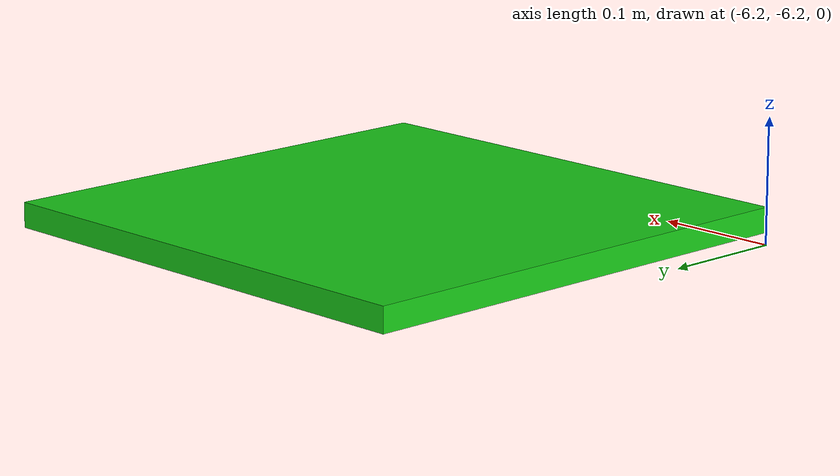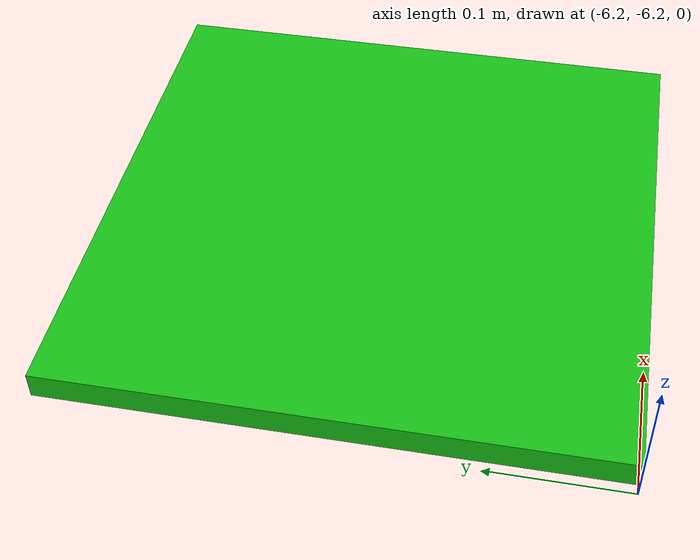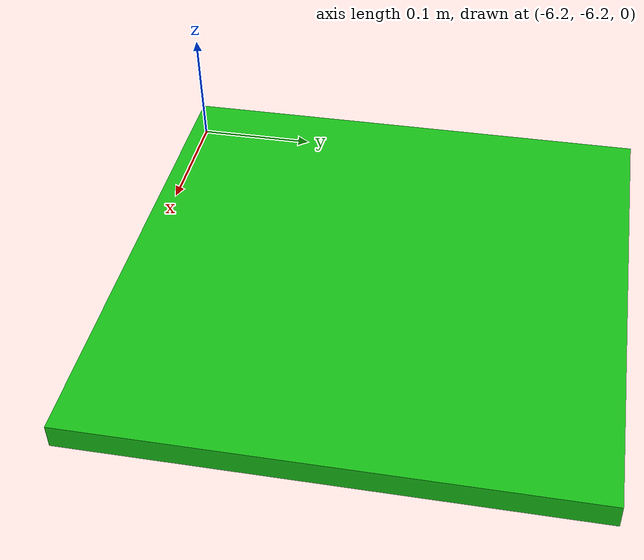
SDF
<?xml version="1.0"?>
<!-- Generated by tools/gen_heightfield_arena.py - do not edit by hand. -->
<sdf version="1.7">
  <world name="terrain_heightfield">
    <physics type="ode">
      <max_step_size>0.01</max_step_size>
    </physics>
    <light name="sun" type="directional">
      <cast_shadows>true</cast_shadows>
      <pose>0 0 20 0 0 0</pose>
      <diffuse>0.8 0.8 0.8 1</diffuse>
      <direction>-0.5 0.3 -1.0</direction>
    </light>
    <model name="terrain">
      <static>true</static>
      <!-- Elevation is measured from this pose, not centred on it. -->
      <pose>0 0 0 0 0 0</pose>
      <link name="link">
        <collision name="collision">
          <geometry><heightmap><uri>terrain.png</uri><size>20 20 3</size></heightmap></geometry>
          <surface>
            <friction><ode><mu>100</mu><mu2>50</mu2></ode></friction>
          </surface>
        </collision>
        <visual name="visual">
          <geometry><mesh><uri>terrain_visual.obj</uri></mesh></geometry>
          <material>
            <ambient>0.45 0.42 0.35 1</ambient>
            <diffuse>0.45 0.42 0.35 1</diffuse>
          </material>
        </visual>
      </link>
    </model>
    <model name="spawn_marker">
      <static>true</static>
      <pose>-6 -6 0.02 0 0 0</pose>
      <link name="link">
        <visual name="visual">
          <geometry><box><size>0.4 0.4 0.02</size></box></geometry>
          <material>
            <ambient>0.1 0.8 0.1 1</ambient>
            <diffuse>0.1 0.8 0.1 1</diffuse>
          </material>
        </visual>
      </link>
    </model>
  </world>
</sdf>
